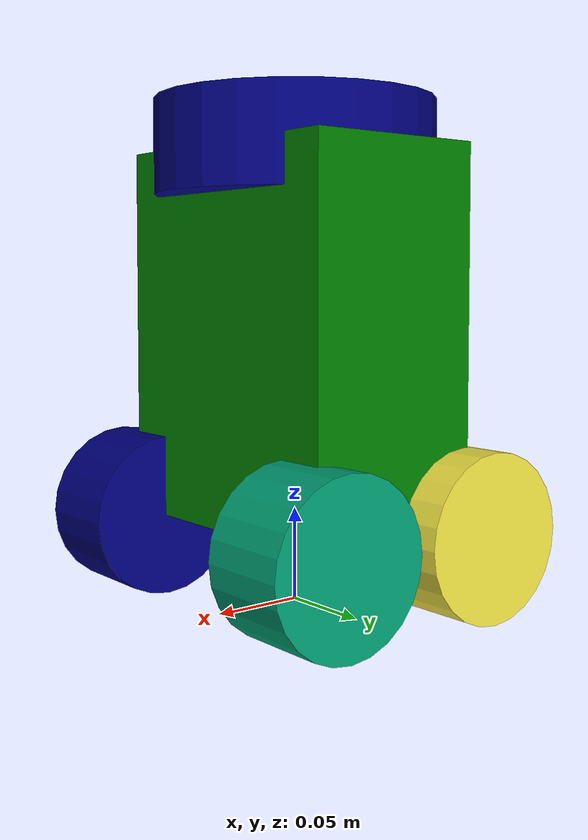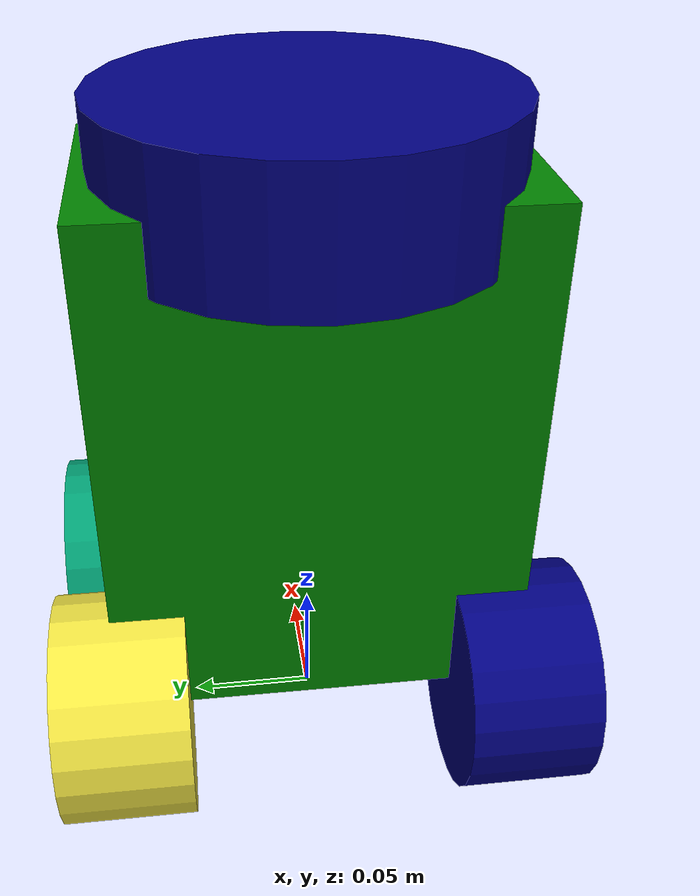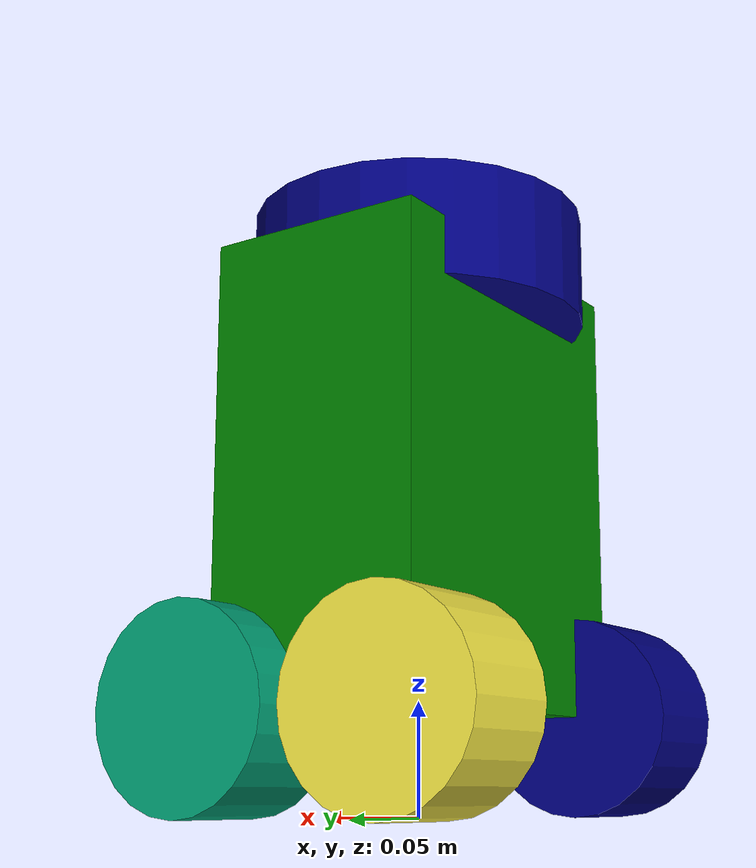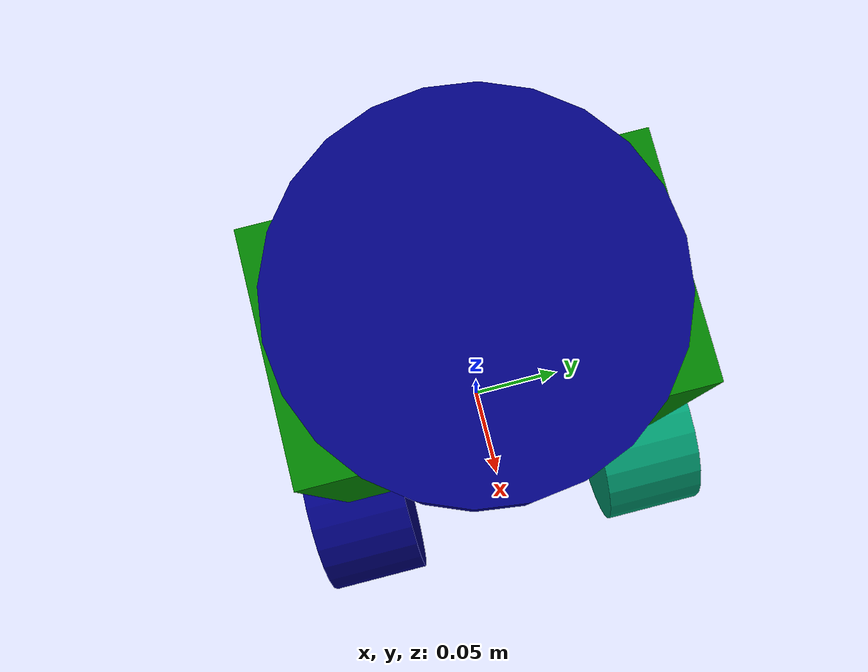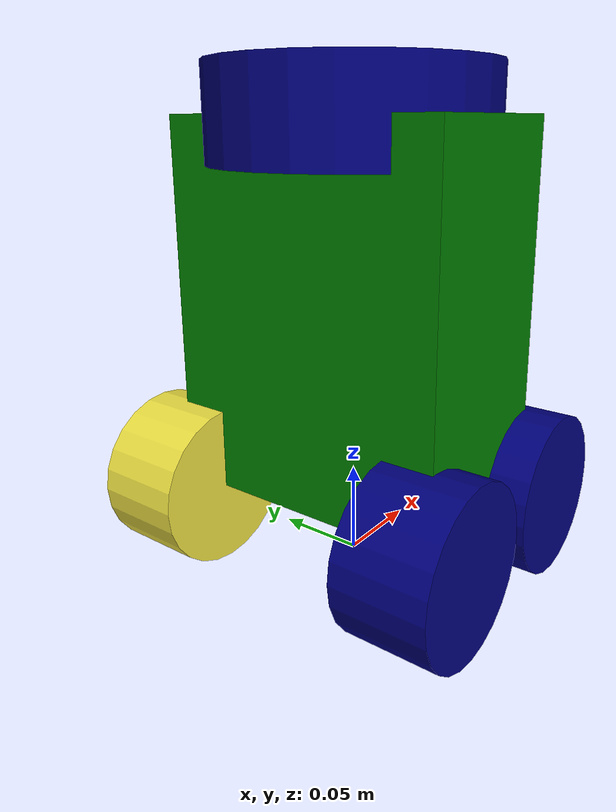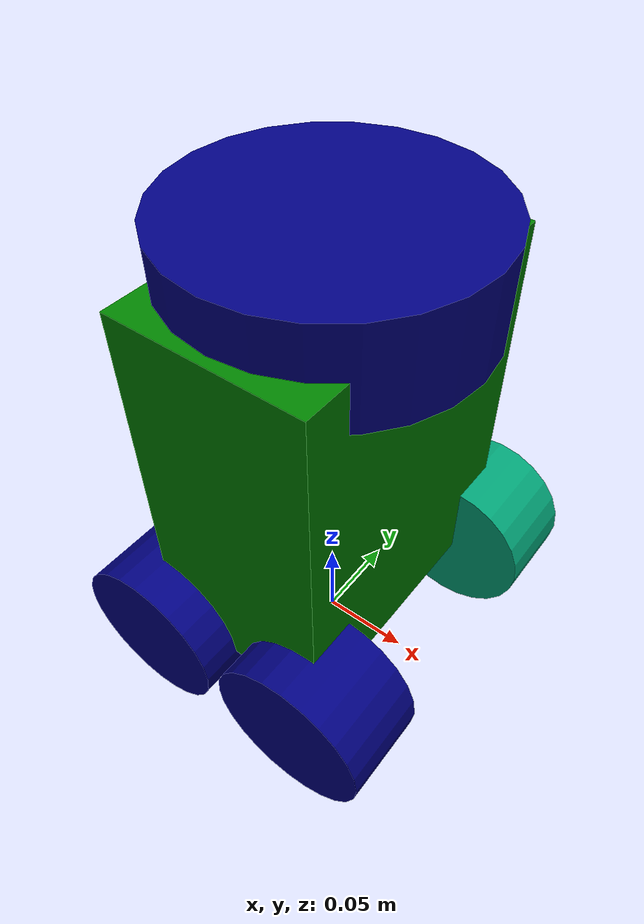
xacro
<?xml version="1.0" encoding="UTF-8"?>
<robot name = "my_robot" xmlns:xacro="http://www.ros.org/wiki/xacro" >

    <xacro:include filename="common_properties.urdf.xacro"/>
    <xacro:include filename="mobile_base.xacro"/>

</robot>

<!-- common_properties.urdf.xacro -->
<robot xmlns:xacro="http://www.ros.org/wiki/xacro" name="robot">

    <material name = "green">
        <color rgba = "0 0.5 0 1"/>
    </material>
    <material name = "blue">
        <color rgba = "0 0 0.5 1"/>
    </material>

      <xacro:macro name="box_inertia" params="m l w h xyz rpy">
    <inertial>
      <mass value="${m}"/>
      <origin xyz="${xyz}" rpy="${rpy}"/>
      <inertia
        ixx="${m/12.0*(h*h + w*w)}"
        iyy="${m/12.0*(l*l + h*h)}"
        izz="${m/12.0*(l*l + w*w)}"
        ixy="0" ixz="0" iyz="0"/>
    </inertial>
  </xacro:macro>

  <xacro:macro name="cylinder_inertia" params="m r h xyz rpy">
    <inertial>
      <mass value="${m}"/>
      <origin xyz="${xyz}" rpy="${rpy}"/>
      <inertia
        ixx="${m*(3*r*r + h*h)/12.0}"
        iyy="${m*(3*r*r + h*h)/12.0}"
        izz="${m*r*r/2.0}"
        ixy="0" ixz="0" iyz="0"/>
    </inertial>
  </xacro:macro>

</robot>

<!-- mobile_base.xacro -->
<robot xmlns:xacro="http://www.ros.org/wiki/xacro" name="robot">

      <xacro:property name="base_length" value="0.1" />
      <xacro:property name="base_width" value="0.16" />
      <xacro:property name="base_height" value="0.2" />
      <xacro:property name="wheel_separation_length" value="0.048" />
      <xacro:property name="wheel_separation_width" value="0.077" />
      <xacro:property name="wheel_radius" value="0.044" />
      <xacro:property name="wheel_length" value="0.05" />
      <xacro:property name="laser_radius" value="0.075" />
      <link name="base_footprint"/>

  <link name="base_link">
    <visual>
      <geometry>
        <box size="${base_length} ${base_width} ${base_height}"/>
      </geometry>
      <origin xyz="0 0 ${base_height/2}" rpy="0 0 0"/>
      <material name="green"/>
    </visual>
    <collision>
      <geometry>
        <box size="${base_length} ${base_width} ${base_height}"/>
      </geometry>
      <origin xyz="0 0 ${base_height/2}" rpy="0 0 0"/>
    </collision>
    <xacro:box_inertia m="5.0" l="${base_length}" w="${base_width}" h="${base_height}" xyz="0 0 0" rpy="0 0 0"/>
  </link>

  <joint name="base_dummy_joint" type="fixed">
    <parent link="base_footprint"/>
    <child link="base_link"/>
    <origin xyz="0 0 ${wheel_radius}" rpy="0 0 0"/>
  </joint>

  <!-- Wheels -->
   <link name="lf">
    <visual>
      <geometry>
        <cylinder radius="${wheel_radius}" length="${wheel_length}"/>
      </geometry>
      <origin xyz="0 0 0" rpy="0 0 0"/>
    </visual>
    <collision>
      <geometry>
        <cylinder radius="${wheel_radius}" length="${wheel_length}"/>
      </geometry>
      <origin xyz="0 0 0" rpy="0 0 0"/>
    </collision>
    <xacro:cylinder_inertia m="5.0" r="${wheel_radius}" h="${wheel_length}" xyz="0 0 0" rpy="0 0 0"/>
  </link>

  <link name="lb">
    <visual>
      <geometry>
        <cylinder radius="${wheel_radius}" length="${wheel_length}"/>
      </geometry>
      <origin xyz="0 0 0" rpy="0 0 0"/>
    </visual>
    <collision>
      <geometry>
        <cylinder radius="${wheel_radius}" length="${wheel_length}"/>
      </geometry>
      <origin xyz="0 0 0" rpy="0 0 0"/>
    </collision>
    <xacro:cylinder_inertia m="5.0" r="${wheel_radius}" h="${wheel_length}" xyz="0 0 0" rpy="0 0 0"/>
  </link>
  <link name="rf">
    <visual>
      <geometry>
        <cylinder radius="${wheel_radius}" length="${wheel_length}"/>
      </geometry>
      <origin xyz="0 0 0" rpy="0 0 0"/>
      <material name="blue"/>
    </visual>
    <collision>
      <geometry>
        <cylinder radius="${wheel_radius}" length="${wheel_length}"/>
      </geometry>
      <origin xyz="0 0 0" rpy="0 0 0"/>
    </collision>
    <xacro:cylinder_inertia m="5.0" r="${wheel_radius}" h="${wheel_length}" xyz="0 0 0" rpy="0 0 0"/>
  </link>
   <link name="rb">
    <visual>
      <geometry>
        <cylinder radius="${wheel_radius}" length="${wheel_length}"/>
      </geometry>
      <origin xyz="0 0 0" rpy="0 0 0"/>
      <material name="blue"/>
    </visual>
    <collision>
      <geometry>
        <cylinder radius="${wheel_radius}" length="${wheel_length}"/>
      </geometry>
      <origin xyz="0 0 0" rpy="0 0 0"/>
    </collision>
    <xacro:cylinder_inertia m="5.0" r="${wheel_radius}" h="${wheel_length}" xyz="0 0 0" rpy="0 0 0"/>
  </link>

  <joint name="base_lf" type="continuous">
    <parent link="base_link"/>
    <child link="lf"/>
    <origin xyz="${wheel_separation_length} ${wheel_separation_width} 0" rpy="${pi/2} 0 0"/>
    <axis xyz="0 0 1"/>
  </joint>

  <joint name="base_lb" type="continuous">
    <parent link="base_link"/>
    <child link="lb"/>
    <origin xyz="${-wheel_separation_length} ${wheel_separation_width} 0" rpy="${pi/2} 0 0"/>
    <axis xyz="0 0 1"/>
  </joint>

  <joint name="base_rf" type="continuous">
    <parent link="base_link"/>
    <child link="rf"/>
    <origin xyz="${wheel_separation_length} ${-wheel_separation_width} 0" rpy="${pi/2} 0 0"/>
    <axis xyz="0 0 1"/>
  </joint>

  <joint name="base_rb" type="continuous">
    <parent link="base_link"/>
    <child link="rb"/>
    <origin xyz="${-wheel_separation_length} ${-wheel_separation_width} 0" rpy="${pi/2} 0 0"/>
    <axis xyz="0 0 1"/>
  </joint>

  <!-- Laser -->
  <link name="laser_frame">
    <visual>
      <geometry>
        <cylinder radius="${laser_radius}" length="${wheel_length}"/>
      </geometry>
      <origin xyz="0 0 0" rpy="0 0 0"/>
      <material name="blue"/>
    </visual>
    <collision>
      <geometry>
        <cylinder radius="${laser_radius}" length="${wheel_length}"/>
      </geometry>
      <origin xyz="0 0 0" rpy="0 0 0"/>
    </collision>
    <xacro:cylinder_inertia m="0.5" r="${laser_radius}" h="${wheel_length}" xyz="0 0 0" rpy="${pi/2} 0 0"/>
  </link>

  <joint name="laser_joint" type="fixed">
    <parent link="base_link"/>
    <child link="laser_frame"/>
    <origin xyz="0 0 ${base_height}" rpy="0 0 0"/>
  </joint>

</robot>
